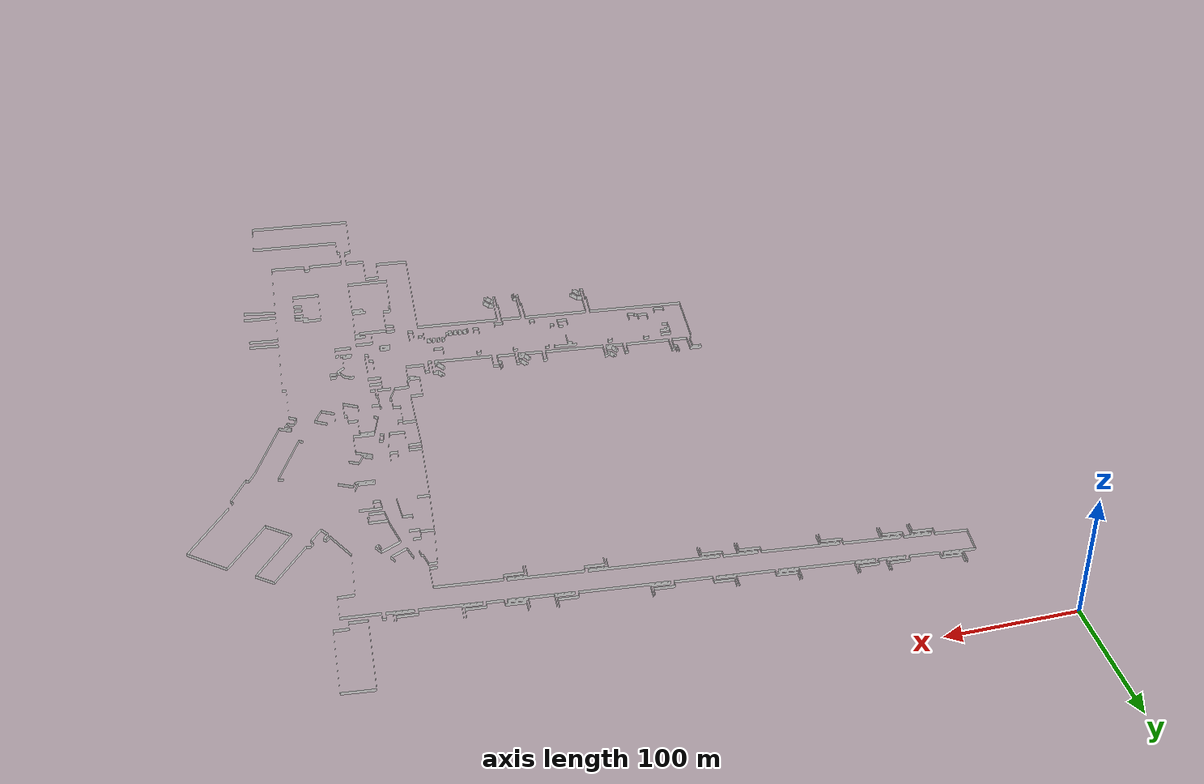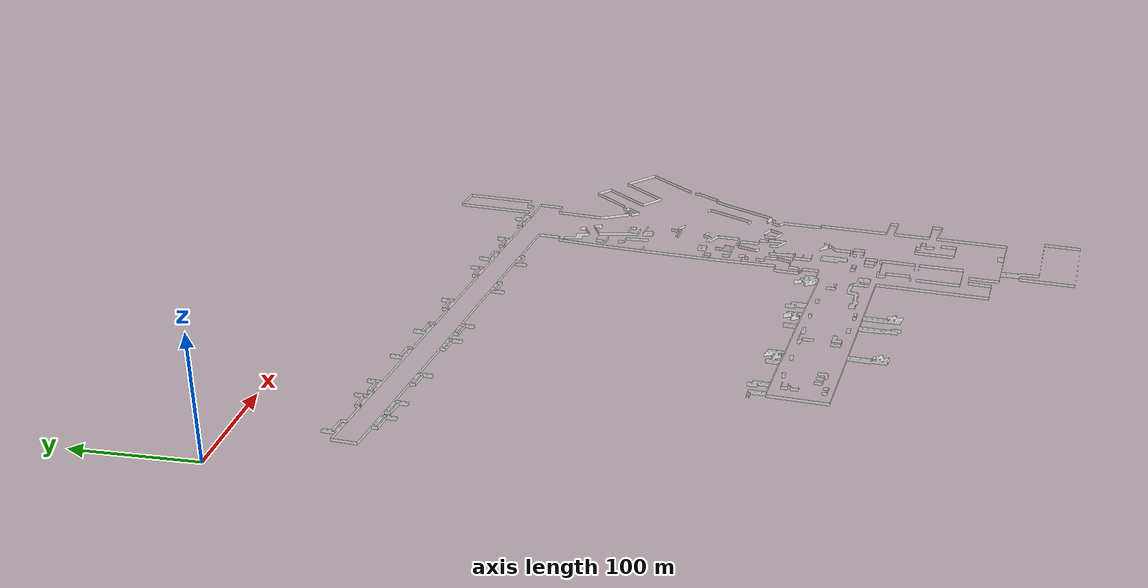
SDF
<?xml version='1.0' encoding='utf-8'?>
<sdf version="1.7">
  <model name="airport_level0">
    <static>true</static>
    <link name="wall_1">
      <visual name="wall_1">
        <geometry>
          <mesh>
            <uri>model://airport_level0/meshes/wall_1.obj</uri>
          </mesh>
        </geometry>
        <transparency>0.0</transparency>
        <material>
          <diffuse>1.0 1.0 1.0</diffuse>
          <specular>0.1 0.1 0.1</specular>
          <pbr>
            <metal>
              <metalness>0.0</metalness>
              <albedo_map>model://airport_level0/meshes/default.png</albedo_map>
            </metal>
          </pbr>
          <script>
            <uri>model://airport_level0/meshes/</uri>
            <name>wall_1_Diffuse</name>
          </script>
        </material>
      </visual>
      <collision name="collision">
        <geometry>
          <mesh>
            <uri>model://airport_level0/meshes/wall_1.obj</uri>
          </mesh>
        </geometry>
        <surface>
          <contact>
            <collide_bitmask>0x01</collide_bitmask>
          </contact>
        </surface>
      </collision>
      <pose>42.142933713846254 -615.6504536340541 0 0 0 0</pose>
    </link>
  </model>
</sdf>
